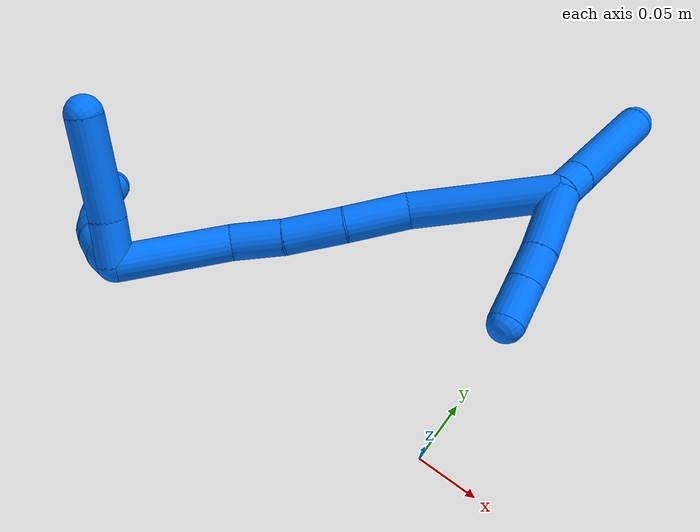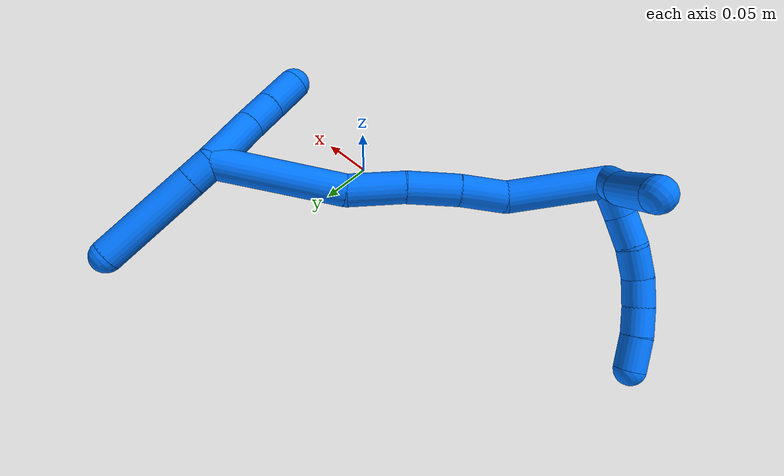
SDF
<sdf version="1.7">
 <world name="default">
  <model name="14">
   <static>0</static>
   <link name="14">
    <collision name="collision-cylinder-e_1_2_8">
     <pose>-0.007245 -0.011128 -0.003494 1.87505 -0.555821 -0.741298</pose>
     <geometry><cylinder><radius>0.0125</radius><length>0.027462</length></cylinder></geometry>
     <surface>
      <friction><ode><mu>1.16</mu><mu2>1.16</mu2><slip1>0</slip1><slip2>0</slip2></ode></friction>
      <contact><ode><kp>1e+06</kp><kd>1</kd><max_vel>0</max_vel><min_depth>0.001</min_depth></ode></contact>
     </surface>
    </collision>
    <visual name="visual-cylinder-e_1_2_8">
     <pose>-0.007245 -0.011128 -0.003494 1.87505 -0.555821 -0.741298</pose>
     <geometry><cylinder><radius>0.0125</radius><length>0.027462</length></cylinder></geometry>
     <material><ambient>0 0.462745 1 1</ambient></material>
    </visual>
    <collision name="collision-cylinder-e_2_8_9">
     <pose>-0.022685 -0.030889 -0.011711 2.0714 -0.69448 -1.09623</pose>
     <geometry><cylinder><radius>0.0125</radius><length>0.02561</length></cylinder></geometry>
     <surface>
      <friction><ode><mu>1.16</mu><mu2>1.16</mu2><slip1>0</slip1><slip2>0</slip2></ode></friction>
      <contact><ode><kp>1e+06</kp><kd>1</kd><max_vel>0</max_vel><min_depth>0.001</min_depth></ode></contact>
     </surface>
    </collision>
    <visual name="visual-cylinder-e_2_8_9">
     <pose>-0.022685 -0.030889 -0.011711 2.0714 -0.69448 -1.09623</pose>
     <geometry><cylinder><radius>0.0125</radius><length>0.02561</length></cylinder></geometry>
     <material><ambient>0 0.462745 1 1</ambient></material>
    </visual>
    <collision name="collision-cylinder-e_3_9_10">
     <pose>-0.036487 -0.049751 -0.021411 2.02361 -0.457887 -0.713191</pose>
     <geometry><cylinder><radius>0.0125</radius><length>0.025368</length></cylinder></geometry>
     <surface>
      <friction><ode><mu>1.16</mu><mu2>1.16</mu2><slip1>0</slip1><slip2>0</slip2></ode></friction>
      <contact><ode><kp>1e+06</kp><kd>1</kd><max_vel>0</max_vel><min_depth>0.001</min_depth></ode></contact>
     </surface>
    </collision>
    <visual name="visual-cylinder-e_3_9_10">
     <pose>-0.036487 -0.049751 -0.021411 2.02361 -0.457887 -0.713191</pose>
     <geometry><cylinder><radius>0.0125</radius><length>0.025368</length></cylinder></geometry>
     <material><ambient>0 0.462745 1 1</ambient></material>
    </visual>
    <collision name="collision-cylinder-e_4_10_11">
     <pose>-0.047397 -0.067078 -0.033449 2.35365 -0.487128 -1.07756</pose>
     <geometry><cylinder><radius>0.0125</radius><length>0.022655</length></cylinder></geometry>
     <surface>
      <friction><ode><mu>1.16</mu><mu2>1.16</mu2><slip1>0</slip1><slip2>0</slip2></ode></friction>
      <contact><ode><kp>1e+06</kp><kd>1</kd><max_vel>0</max_vel><min_depth>0.001</min_depth></ode></contact>
     </surface>
    </collision>
    <visual name="visual-cylinder-e_4_10_11">
     <pose>-0.047397 -0.067078 -0.033449 2.35365 -0.487128 -1.07756</pose>
     <geometry><cylinder><radius>0.0125</radius><length>0.022655</length></cylinder></geometry>
     <material><ambient>0 0.462745 1 1</ambient></material>
    </visual>
    <collision name="collision-cylinder-e_5_11_12">
     <pose>-0.057662 -0.080262 -0.048501 2.49065 -0.458886 -1.21077</pose>
     <geometry><cylinder><radius>0.0125</radius><length>0.022412</length></cylinder></geometry>
     <surface>
      <friction><ode><mu>1.16</mu><mu2>1.16</mu2><slip1>0</slip1><slip2>0</slip2></ode></friction>
      <contact><ode><kp>1e+06</kp><kd>1</kd><max_vel>0</max_vel><min_depth>0.001</min_depth></ode></contact>
     </surface>
    </collision>
    <visual name="visual-cylinder-e_5_11_12">
     <pose>-0.057662 -0.080262 -0.048501 2.49065 -0.458886 -1.21077</pose>
     <geometry><cylinder><radius>0.0125</radius><length>0.022412</length></cylinder></geometry>
     <material><ambient>0 0.462745 1 1</ambient></material>
    </visual>
    <collision name="collision-cylinder-e_6_12_6">
     <pose>-0.066961 -0.0933 -0.066903 2.55295 -0.333394 -1.01347</pose>
     <geometry><cylinder><radius>0.0125</radius><length>0.026493</length></cylinder></geometry>
     <surface>
      <friction><ode><mu>1.16</mu><mu2>1.16</mu2><slip1>0</slip1><slip2>0</slip2></ode></friction>
      <contact><ode><kp>1e+06</kp><kd>1</kd><max_vel>0</max_vel><min_depth>0.001</min_depth></ode></contact>
     </surface>
    </collision>
    <visual name="visual-cylinder-e_6_12_6">
     <pose>-0.066961 -0.0933 -0.066903 2.55295 -0.333394 -1.01347</pose>
     <geometry><cylinder><radius>0.0125</radius><length>0.026493</length></cylinder></geometry>
     <material><ambient>0 0.462745 1 1</ambient></material>
    </visual>
    <collision name="collision-cylinder-e_1_2_13">
     <pose>-0.011607 0.008858 -0.005311 -2.11089 -0.843672 1.34008</pose>
     <geometry><cylinder><radius>0.0125</radius><length>0.031074</length></cylinder></geometry>
     <surface>
      <friction><ode><mu>1.16</mu><mu2>1.16</mu2><slip1>0</slip1><slip2>0</slip2></ode></friction>
      <contact><ode><kp>1e+06</kp><kd>1</kd><max_vel>0</max_vel><min_depth>0.001</min_depth></ode></contact>
     </surface>
    </collision>
    <visual name="visual-cylinder-e_1_2_13">
     <pose>-0.011607 0.008858 -0.005311 -2.11089 -0.843672 1.34008</pose>
     <geometry><cylinder><radius>0.0125</radius><length>0.031074</length></cylinder></geometry>
     <material><ambient>0 0.462745 1 1</ambient></material>
    </visual>
    <collision name="collision-cylinder-e_2_13_5">
     <pose>-0.048104 0.039864 -0.019434 -1.94947 -0.806982 1.1234</pose>
     <geometry><cylinder><radius>0.0125</radius><length>0.068926</length></cylinder></geometry>
     <surface>
      <friction><ode><mu>1.16</mu><mu2>1.16</mu2><slip1>0</slip1><slip2>0</slip2></ode></friction>
      <contact><ode><kp>1e+06</kp><kd>1</kd><max_vel>0</max_vel><min_depth>0.001</min_depth></ode></contact>
     </surface>
    </collision>
    <visual name="visual-cylinder-e_2_13_5">
     <pose>-0.048104 0.039864 -0.019434 -1.94947 -0.806982 1.1234</pose>
     <geometry><cylinder><radius>0.0125</radius><length>0.068926</length></cylinder></geometry>
     <material><ambient>0 0.462745 1 1</ambient></material>
    </visual>
    <collision name="collision-cylinder-e_1_2_14">
     <pose>0.019927 0.009582 -0.032061 -2.85118 0.537095 -2.1647</pose>
     <geometry><cylinder><radius>0.0125</radius><length>0.077893</length></cylinder></geometry>
     <surface>
      <friction><ode><mu>1.16</mu><mu2>1.16</mu2><slip1>0</slip1><slip2>0</slip2></ode></friction>
      <contact><ode><kp>1e+06</kp><kd>1</kd><max_vel>0</max_vel><min_depth>0.001</min_depth></ode></contact>
     </surface>
    </collision>
    <visual name="visual-cylinder-e_1_2_14">
     <pose>0.019927 0.009582 -0.032061 -2.85118 0.537095 -2.1647</pose>
     <geometry><cylinder><radius>0.0125</radius><length>0.077893</length></cylinder></geometry>
     <material><ambient>0 0.462745 1 1</ambient></material>
    </visual>
    <collision name="collision-cylinder-e_2_14_15">
     <pose>0.050601 0.027608 -0.07569 -2.51104 0.643827 -1.5931</pose>
     <geometry><cylinder><radius>0.0125</radius><length>0.035812</length></cylinder></geometry>
     <surface>
      <friction><ode><mu>1.16</mu><mu2>1.16</mu2><slip1>0</slip1><slip2>0</slip2></ode></friction>
      <contact><ode><kp>1e+06</kp><kd>1</kd><max_vel>0</max_vel><min_depth>0.001</min_depth></ode></contact>
     </surface>
    </collision>
    <visual name="visual-cylinder-e_2_14_15">
     <pose>0.050601 0.027608 -0.07569 -2.51104 0.643827 -1.5931</pose>
     <geometry><cylinder><radius>0.0125</radius><length>0.035812</length></cylinder></geometry>
     <material><ambient>0 0.462745 1 1</ambient></material>
    </visual>
    <collision name="collision-cylinder-e_3_15_16">
     <pose>0.072073 0.045555 -0.102197 -2.57501 0.544537 -1.529</pose>
     <geometry><cylinder><radius>0.0125</radius><length>0.041399</length></cylinder></geometry>
     <surface>
      <friction><ode><mu>1.16</mu><mu2>1.16</mu2><slip1>0</slip1><slip2>0</slip2></ode></friction>
      <contact><ode><kp>1e+06</kp><kd>1</kd><max_vel>0</max_vel><min_depth>0.001</min_depth></ode></contact>
     </surface>
    </collision>
    <visual name="visual-cylinder-e_3_15_16">
     <pose>0.072073 0.045555 -0.102197 -2.57501 0.544537 -1.529</pose>
     <geometry><cylinder><radius>0.0125</radius><length>0.041399</length></cylinder></geometry>
     <material><ambient>0 0.462745 1 1</ambient></material>
    </visual>
    <collision name="collision-cylinder-e_4_16_17">
     <pose>0.093773 0.063163 -0.134569 -2.70646 0.518831 -1.75254</pose>
     <geometry><cylinder><radius>0.0125</radius><length>0.044278</length></cylinder></geometry>
     <surface>
      <friction><ode><mu>1.16</mu><mu2>1.16</mu2><slip1>0</slip1><slip2>0</slip2></ode></friction>
      <contact><ode><kp>1e+06</kp><kd>1</kd><max_vel>0</max_vel><min_depth>0.001</min_depth></ode></contact>
     </surface>
    </collision>
    <visual name="visual-cylinder-e_4_16_17">
     <pose>0.093773 0.063163 -0.134569 -2.70646 0.518831 -1.75254</pose>
     <geometry><cylinder><radius>0.0125</radius><length>0.044278</length></cylinder></geometry>
     <material><ambient>0 0.462745 1 1</ambient></material>
    </visual>
    <collision name="collision-cylinder-e_5_17_1">
     <pose>0.134215 0.098189 -0.182632 -2.42052 0.625686 -1.4182</pose>
     <geometry><cylinder><radius>0.0125</radius><length>0.100618</length></cylinder></geometry>
     <surface>
      <friction><ode><mu>1.16</mu><mu2>1.16</mu2><slip1>0</slip1><slip2>0</slip2></ode></friction>
      <contact><ode><kp>1e+06</kp><kd>1</kd><max_vel>0</max_vel><min_depth>0.001</min_depth></ode></contact>
     </surface>
    </collision>
    <visual name="visual-cylinder-e_5_17_1">
     <pose>0.134215 0.098189 -0.182632 -2.42052 0.625686 -1.4182</pose>
     <geometry><cylinder><radius>0.0125</radius><length>0.100618</length></cylinder></geometry>
     <material><ambient>0 0.462745 1 1</ambient></material>
    </visual>
    <collision name="collision-cylinder-e_1_1_18">
     <pose>0.172682 0.121603 -0.192621 0.168307 0.40615 0.034735</pose>
     <geometry><cylinder><radius>0.0125</radius><length>0.04558</length></cylinder></geometry>
     <surface>
      <friction><ode><mu>1.16</mu><mu2>1.16</mu2><slip1>0</slip1><slip2>0</slip2></ode></friction>
      <contact><ode><kp>1e+06</kp><kd>1</kd><max_vel>0</max_vel><min_depth>0.001</min_depth></ode></contact>
     </surface>
    </collision>
    <visual name="visual-cylinder-e_1_1_18">
     <pose>0.172682 0.121603 -0.192621 0.168307 0.40615 0.034735</pose>
     <geometry><cylinder><radius>0.0125</radius><length>0.04558</length></cylinder></geometry>
     <material><ambient>0 0.462745 1 1</ambient></material>
    </visual>
    <collision name="collision-cylinder-e_2_18_19">
     <pose>0.185575 0.116519 -0.16034 0.134656 0.319711 0.021743</pose>
     <geometry><cylinder><radius>0.0125</radius><length>0.024749</length></cylinder></geometry>
     <surface>
      <friction><ode><mu>1.16</mu><mu2>1.16</mu2><slip1>0</slip1><slip2>0</slip2></ode></friction>
      <contact><ode><kp>1e+06</kp><kd>1</kd><max_vel>0</max_vel><min_depth>0.001</min_depth></ode></contact>
     </surface>
    </collision>
    <visual name="visual-cylinder-e_2_18_19">
     <pose>0.185575 0.116519 -0.16034 0.134656 0.319711 0.021743</pose>
     <geometry><cylinder><radius>0.0125</radius><length>0.024749</length></cylinder></geometry>
     <material><ambient>0 0.462745 1 1</ambient></material>
    </visual>
    <collision name="collision-cylinder-e_3_19_4">
     <pose>0.194021 0.113139 -0.134696 0.128054 0.312171 0.020178</pose>
     <geometry><cylinder><radius>0.0125</radius><length>0.029671</length></cylinder></geometry>
     <surface>
      <friction><ode><mu>1.16</mu><mu2>1.16</mu2><slip1>0</slip1><slip2>0</slip2></ode></friction>
      <contact><ode><kp>1e+06</kp><kd>1</kd><max_vel>0</max_vel><min_depth>0.001</min_depth></ode></contact>
     </surface>
    </collision>
    <visual name="visual-cylinder-e_3_19_4">
     <pose>0.194021 0.113139 -0.134696 0.128054 0.312171 0.020178</pose>
     <geometry><cylinder><radius>0.0125</radius><length>0.029671</length></cylinder></geometry>
     <material><ambient>0 0.462745 1 1</ambient></material>
    </visual>
    <collision name="collision-cylinder-e_1_1_20">
     <pose>0.164011 0.124301 -0.22324 3.06069 0.033166 0.777809</pose>
     <geometry><cylinder><radius>0.0125</radius><length>0.020035</length></cylinder></geometry>
     <surface>
      <friction><ode><mu>1.16</mu><mu2>1.16</mu2><slip1>0</slip1><slip2>0</slip2></ode></friction>
      <contact><ode><kp>1e+06</kp><kd>1</kd><max_vel>0</max_vel><min_depth>0.001</min_depth></ode></contact>
     </surface>
    </collision>
    <visual name="visual-cylinder-e_1_1_20">
     <pose>0.164011 0.124301 -0.22324 3.06069 0.033166 0.777809</pose>
     <geometry><cylinder><radius>0.0125</radius><length>0.020035</length></cylinder></geometry>
     <material><ambient>0 0.462745 1 1</ambient></material>
    </visual>
    <collision name="collision-cylinder-e_2_20_3">
     <pose>0.165553 0.120384 -0.273063 3.06373 0.030272 0.741356</pose>
     <geometry><cylinder><radius>0.0125</radius><length>0.079965</length></cylinder></geometry>
     <surface>
      <friction><ode><mu>1.16</mu><mu2>1.16</mu2><slip1>0</slip1><slip2>0</slip2></ode></friction>
      <contact><ode><kp>1e+06</kp><kd>1</kd><max_vel>0</max_vel><min_depth>0.001</min_depth></ode></contact>
     </surface>
    </collision>
    <visual name="visual-cylinder-e_2_20_3">
     <pose>0.165553 0.120384 -0.273063 3.06373 0.030272 0.741356</pose>
     <geometry><cylinder><radius>0.0125</radius><length>0.079965</length></cylinder></geometry>
     <material><ambient>0 0.462745 1 1</ambient></material>
    </visual>
    <collision name="collision-sphere-3">
     <pose>0.166763 0.117276 -0.312906 0 -0 0</pose>
     <geometry><sphere><radius>0.0125</radius></sphere></geometry>
     <surface>
      <friction><ode><mu>1.16</mu><mu2>1.16</mu2><slip1>0</slip1><slip2>0</slip2></ode></friction>
      <contact><ode><kp>1e+06</kp><kd>1</kd><max_vel>0</max_vel><min_depth>0.001</min_depth></ode></contact>
     </surface>
    </collision>
    <visual name="visual-sphere-3">
     <pose>0.166763 0.117276 -0.312906 0 -0 0</pose>
     <geometry><sphere><radius>0.0125</radius></sphere></geometry>
     <material><ambient>0 0.462745 1 1</ambient></material>
    </visual>
    <collision name="collision-sphere-20">
     <pose>0.164343 0.123492 -0.23322 0 -0 0</pose>
     <geometry><sphere><radius>0.0125</radius></sphere></geometry>
     <surface>
      <friction><ode><mu>1.16</mu><mu2>1.16</mu2><slip1>0</slip1><slip2>0</slip2></ode></friction>
      <contact><ode><kp>1e+06</kp><kd>1</kd><max_vel>0</max_vel><min_depth>0.001</min_depth></ode></contact>
     </surface>
    </collision>
    <visual name="visual-sphere-20">
     <pose>0.164343 0.123492 -0.23322 0 -0 0</pose>
     <geometry><sphere><radius>0.0125</radius></sphere></geometry>
     <material><ambient>0 0.462745 1 1</ambient></material>
    </visual>
    <collision name="collision-sphere-4">
     <pose>0.198577 0.111336 -0.120692 0 -0 0</pose>
     <geometry><sphere><radius>0.0125</radius></sphere></geometry>
     <surface>
      <friction><ode><mu>1.16</mu><mu2>1.16</mu2><slip1>0</slip1><slip2>0</slip2></ode></friction>
      <contact><ode><kp>1e+06</kp><kd>1</kd><max_vel>0</max_vel><min_depth>0.001</min_depth></ode></contact>
     </surface>
    </collision>
    <visual name="visual-sphere-4">
     <pose>0.198577 0.111336 -0.120692 0 -0 0</pose>
     <geometry><sphere><radius>0.0125</radius></sphere></geometry>
     <material><ambient>0 0.462745 1 1</ambient></material>
    </visual>
    <collision name="collision-sphere-12">
     <pose>-0.062626 -0.08635 -0.056493 0 -0 0</pose>
     <geometry><sphere><radius>0.0125</radius></sphere></geometry>
     <surface>
      <friction><ode><mu>1.16</mu><mu2>1.16</mu2><slip1>0</slip1><slip2>0</slip2></ode></friction>
      <contact><ode><kp>1e+06</kp><kd>1</kd><max_vel>0</max_vel><min_depth>0.001</min_depth></ode></contact>
     </surface>
    </collision>
    <visual name="visual-sphere-12">
     <pose>-0.062626 -0.08635 -0.056493 0 -0 0</pose>
     <geometry><sphere><radius>0.0125</radius></sphere></geometry>
     <material><ambient>0 0.462745 1 1</ambient></material>
    </visual>
    <collision name="collision-sphere-11">
     <pose>-0.052699 -0.074174 -0.040508 0 -0 0</pose>
     <geometry><sphere><radius>0.0125</radius></sphere></geometry>
     <surface>
      <friction><ode><mu>1.16</mu><mu2>1.16</mu2><slip1>0</slip1><slip2>0</slip2></ode></friction>
      <contact><ode><kp>1e+06</kp><kd>1</kd><max_vel>0</max_vel><min_depth>0.001</min_depth></ode></contact>
     </surface>
    </collision>
    <visual name="visual-sphere-11">
     <pose>-0.052699 -0.074174 -0.040508 0 -0 0</pose>
     <geometry><sphere><radius>0.0125</radius></sphere></geometry>
     <material><ambient>0 0.462745 1 1</ambient></material>
    </visual>
    <collision name="collision-sphere-10">
     <pose>-0.042094 -0.059982 -0.026389 0 -0 0</pose>
     <geometry><sphere><radius>0.0125</radius></sphere></geometry>
     <surface>
      <friction><ode><mu>1.16</mu><mu2>1.16</mu2><slip1>0</slip1><slip2>0</slip2></ode></friction>
      <contact><ode><kp>1e+06</kp><kd>1</kd><max_vel>0</max_vel><min_depth>0.001</min_depth></ode></contact>
     </surface>
    </collision>
    <visual name="visual-sphere-10">
     <pose>-0.042094 -0.059982 -0.026389 0 -0 0</pose>
     <geometry><sphere><radius>0.0125</radius></sphere></geometry>
     <material><ambient>0 0.462745 1 1</ambient></material>
    </visual>
    <collision name="collision-sphere-9">
     <pose>-0.03088 -0.03952 -0.016433 0 -0 0</pose>
     <geometry><sphere><radius>0.0125</radius></sphere></geometry>
     <surface>
      <friction><ode><mu>1.16</mu><mu2>1.16</mu2><slip1>0</slip1><slip2>0</slip2></ode></friction>
      <contact><ode><kp>1e+06</kp><kd>1</kd><max_vel>0</max_vel><min_depth>0.001</min_depth></ode></contact>
     </surface>
    </collision>
    <visual name="visual-sphere-9">
     <pose>-0.03088 -0.03952 -0.016433 0 -0 0</pose>
     <geometry><sphere><radius>0.0125</radius></sphere></geometry>
     <material><ambient>0 0.462745 1 1</ambient></material>
    </visual>
    <collision name="collision-sphere-2">
     <geometry><sphere><radius>0.0125</radius></sphere></geometry>
     <surface>
      <friction><ode><mu>1.16</mu><mu2>1.16</mu2><slip1>0</slip1><slip2>0</slip2></ode></friction>
      <contact><ode><kp>1e+06</kp><kd>1</kd><max_vel>0</max_vel><min_depth>0.001</min_depth></ode></contact>
     </surface>
    </collision>
    <visual name="visual-sphere-2">
     <geometry><sphere><radius>0.0125</radius></sphere></geometry>
     <material><ambient>0 0.462745 1 1</ambient></material>
    </visual>
    <collision name="collision-sphere-19">
     <pose>0.189464 0.114942 -0.148699 0 -0 0</pose>
     <geometry><sphere><radius>0.0125</radius></sphere></geometry>
     <surface>
      <friction><ode><mu>1.16</mu><mu2>1.16</mu2><slip1>0</slip1><slip2>0</slip2></ode></friction>
      <contact><ode><kp>1e+06</kp><kd>1</kd><max_vel>0</max_vel><min_depth>0.001</min_depth></ode></contact>
     </surface>
    </collision>
    <visual name="visual-sphere-19">
     <pose>0.189464 0.114942 -0.148699 0 -0 0</pose>
     <geometry><sphere><radius>0.0125</radius></sphere></geometry>
     <material><ambient>0 0.462745 1 1</ambient></material>
    </visual>
    <collision name="collision-sphere-8">
     <pose>-0.01449 -0.022257 -0.006989 0 -0 0</pose>
     <geometry><sphere><radius>0.0125</radius></sphere></geometry>
     <surface>
      <friction><ode><mu>1.16</mu><mu2>1.16</mu2><slip1>0</slip1><slip2>0</slip2></ode></friction>
      <contact><ode><kp>1e+06</kp><kd>1</kd><max_vel>0</max_vel><min_depth>0.001</min_depth></ode></contact>
     </surface>
    </collision>
    <visual name="visual-sphere-8">
     <pose>-0.01449 -0.022257 -0.006989 0 -0 0</pose>
     <geometry><sphere><radius>0.0125</radius></sphere></geometry>
     <material><ambient>0 0.462745 1 1</ambient></material>
    </visual>
    <collision name="collision-sphere-6">
     <pose>-0.071296 -0.100249 -0.077314 0 -0 0</pose>
     <geometry><sphere><radius>0.0125</radius></sphere></geometry>
     <surface>
      <friction><ode><mu>1.16</mu><mu2>1.16</mu2><slip1>0</slip1><slip2>0</slip2></ode></friction>
      <contact><ode><kp>1e+06</kp><kd>1</kd><max_vel>0</max_vel><min_depth>0.001</min_depth></ode></contact>
     </surface>
    </collision>
    <visual name="visual-sphere-6">
     <pose>-0.071296 -0.100249 -0.077314 0 -0 0</pose>
     <geometry><sphere><radius>0.0125</radius></sphere></geometry>
     <material><ambient>0 0.462745 1 1</ambient></material>
    </visual>
    <collision name="collision-sphere-13">
     <pose>-0.023215 0.017715 -0.010621 0 -0 0</pose>
     <geometry><sphere><radius>0.0125</radius></sphere></geometry>
     <surface>
      <friction><ode><mu>1.16</mu><mu2>1.16</mu2><slip1>0</slip1><slip2>0</slip2></ode></friction>
      <contact><ode><kp>1e+06</kp><kd>1</kd><max_vel>0</max_vel><min_depth>0.001</min_depth></ode></contact>
     </surface>
    </collision>
    <visual name="visual-sphere-13">
     <pose>-0.023215 0.017715 -0.010621 0 -0 0</pose>
     <geometry><sphere><radius>0.0125</radius></sphere></geometry>
     <material><ambient>0 0.462745 1 1</ambient></material>
    </visual>
    <collision name="collision-sphere-5">
     <pose>-0.072994 0.062013 -0.028246 0 -0 0</pose>
     <geometry><sphere><radius>0.0125</radius></sphere></geometry>
     <surface>
      <friction><ode><mu>1.16</mu><mu2>1.16</mu2><slip1>0</slip1><slip2>0</slip2></ode></friction>
      <contact><ode><kp>1e+06</kp><kd>1</kd><max_vel>0</max_vel><min_depth>0.001</min_depth></ode></contact>
     </surface>
    </collision>
    <visual name="visual-sphere-5">
     <pose>-0.072994 0.062013 -0.028246 0 -0 0</pose>
     <geometry><sphere><radius>0.0125</radius></sphere></geometry>
     <material><ambient>0 0.462745 1 1</ambient></material>
    </visual>
    <collision name="collision-sphere-14">
     <pose>0.039853 0.019164 -0.064123 0 -0 0</pose>
     <geometry><sphere><radius>0.0125</radius></sphere></geometry>
     <surface>
      <friction><ode><mu>1.16</mu><mu2>1.16</mu2><slip1>0</slip1><slip2>0</slip2></ode></friction>
      <contact><ode><kp>1e+06</kp><kd>1</kd><max_vel>0</max_vel><min_depth>0.001</min_depth></ode></contact>
     </surface>
    </collision>
    <visual name="visual-sphere-14">
     <pose>0.039853 0.019164 -0.064123 0 -0 0</pose>
     <geometry><sphere><radius>0.0125</radius></sphere></geometry>
     <material><ambient>0 0.462745 1 1</ambient></material>
    </visual>
    <collision name="collision-sphere-15">
     <pose>0.06135 0.036051 -0.087257 0 -0 0</pose>
     <geometry><sphere><radius>0.0125</radius></sphere></geometry>
     <surface>
      <friction><ode><mu>1.16</mu><mu2>1.16</mu2><slip1>0</slip1><slip2>0</slip2></ode></friction>
      <contact><ode><kp>1e+06</kp><kd>1</kd><max_vel>0</max_vel><min_depth>0.001</min_depth></ode></contact>
     </surface>
    </collision>
    <visual name="visual-sphere-15">
     <pose>0.06135 0.036051 -0.087257 0 -0 0</pose>
     <geometry><sphere><radius>0.0125</radius></sphere></geometry>
     <material><ambient>0 0.462745 1 1</ambient></material>
    </visual>
    <collision name="collision-sphere-16">
     <pose>0.082796 0.055059 -0.117136 0 -0 0</pose>
     <geometry><sphere><radius>0.0125</radius></sphere></geometry>
     <surface>
      <friction><ode><mu>1.16</mu><mu2>1.16</mu2><slip1>0</slip1><slip2>0</slip2></ode></friction>
      <contact><ode><kp>1e+06</kp><kd>1</kd><max_vel>0</max_vel><min_depth>0.001</min_depth></ode></contact>
     </surface>
    </collision>
    <visual name="visual-sphere-16">
     <pose>0.082796 0.055059 -0.117136 0 -0 0</pose>
     <geometry><sphere><radius>0.0125</radius></sphere></geometry>
     <material><ambient>0 0.462745 1 1</ambient></material>
    </visual>
    <collision name="collision-sphere-17">
     <pose>0.104751 0.071267 -0.152003 0 -0 0</pose>
     <geometry><sphere><radius>0.0125</radius></sphere></geometry>
     <surface>
      <friction><ode><mu>1.16</mu><mu2>1.16</mu2><slip1>0</slip1><slip2>0</slip2></ode></friction>
      <contact><ode><kp>1e+06</kp><kd>1</kd><max_vel>0</max_vel><min_depth>0.001</min_depth></ode></contact>
     </surface>
    </collision>
    <visual name="visual-sphere-17">
     <pose>0.104751 0.071267 -0.152003 0 -0 0</pose>
     <geometry><sphere><radius>0.0125</radius></sphere></geometry>
     <material><ambient>0 0.462745 1 1</ambient></material>
    </visual>
    <collision name="collision-sphere-1">
     <pose>0.163679 0.12511 -0.213261 0 -0 0</pose>
     <geometry><sphere><radius>0.0125</radius></sphere></geometry>
     <surface>
      <friction><ode><mu>1.16</mu><mu2>1.16</mu2><slip1>0</slip1><slip2>0</slip2></ode></friction>
      <contact><ode><kp>1e+06</kp><kd>1</kd><max_vel>0</max_vel><min_depth>0.001</min_depth></ode></contact>
     </surface>
    </collision>
    <visual name="visual-sphere-1">
     <pose>0.163679 0.12511 -0.213261 0 -0 0</pose>
     <geometry><sphere><radius>0.0125</radius></sphere></geometry>
     <material><ambient>0 0.462745 1 1</ambient></material>
    </visual>
    <collision name="collision-sphere-18">
     <pose>0.181686 0.118096 -0.171981 0 -0 0</pose>
     <geometry><sphere><radius>0.0125</radius></sphere></geometry>
     <surface>
      <friction><ode><mu>1.16</mu><mu2>1.16</mu2><slip1>0</slip1><slip2>0</slip2></ode></friction>
      <contact><ode><kp>1e+06</kp><kd>1</kd><max_vel>0</max_vel><min_depth>0.001</min_depth></ode></contact>
     </surface>
    </collision>
    <visual name="visual-sphere-18">
     <pose>0.181686 0.118096 -0.171981 0 -0 0</pose>
     <geometry><sphere><radius>0.0125</radius></sphere></geometry>
     <material><ambient>0 0.462745 1 1</ambient></material>
    </visual>
    <inertial>
     <pose>0.065637 0.046762 -0.110516 0 -0 0</pose>
     <mass>0.75</mass>
     <inertia>
      <ixx>-1.7e-05</ixx>
      <ixy>0</ixy>
      <ixz>0</ixz>
      <iyy>-1.6e-05</iyy>
      <iyz>0</iyz>
      <izz>-0.00016</izz>
     </inertia>
    </inertial>
   </link>
   <pose>-0.230447 -0.035894 0.131421 1.30323 0.248474 -0.169427</pose>
  </model>
 </world>
</sdf>
